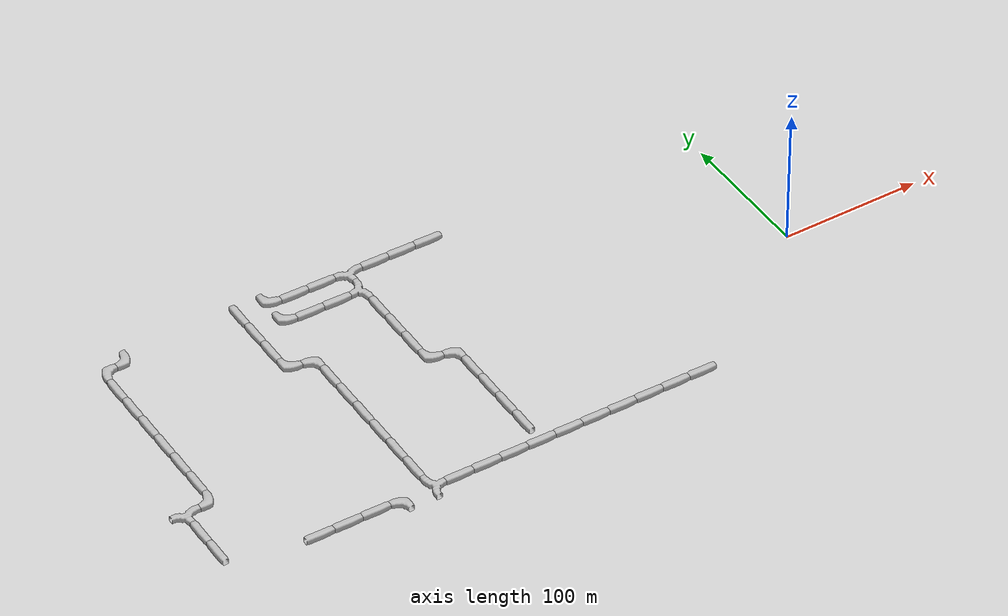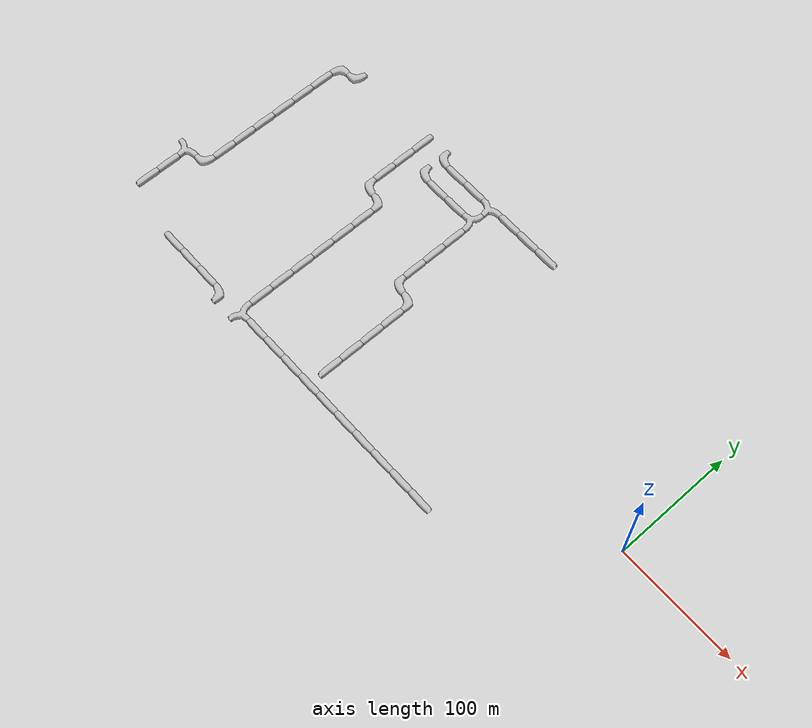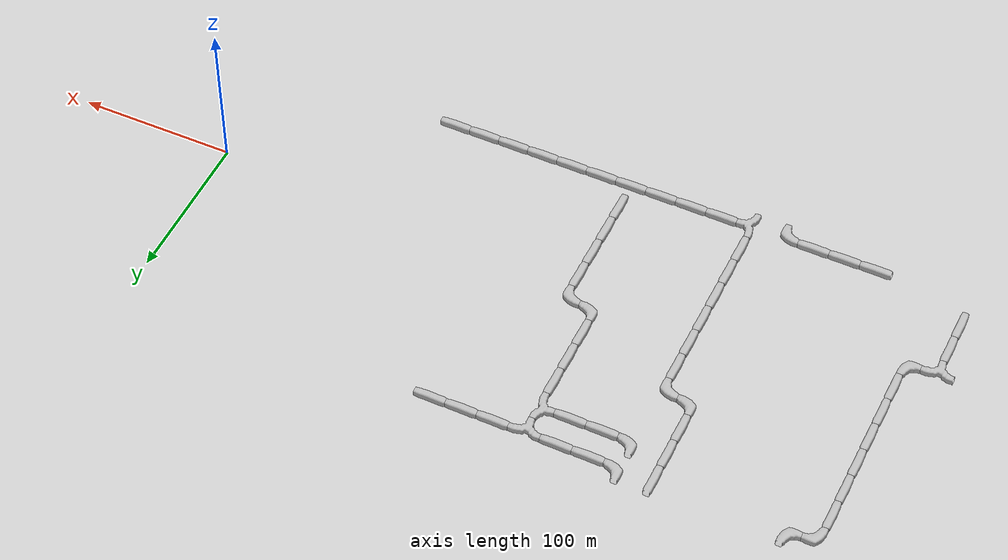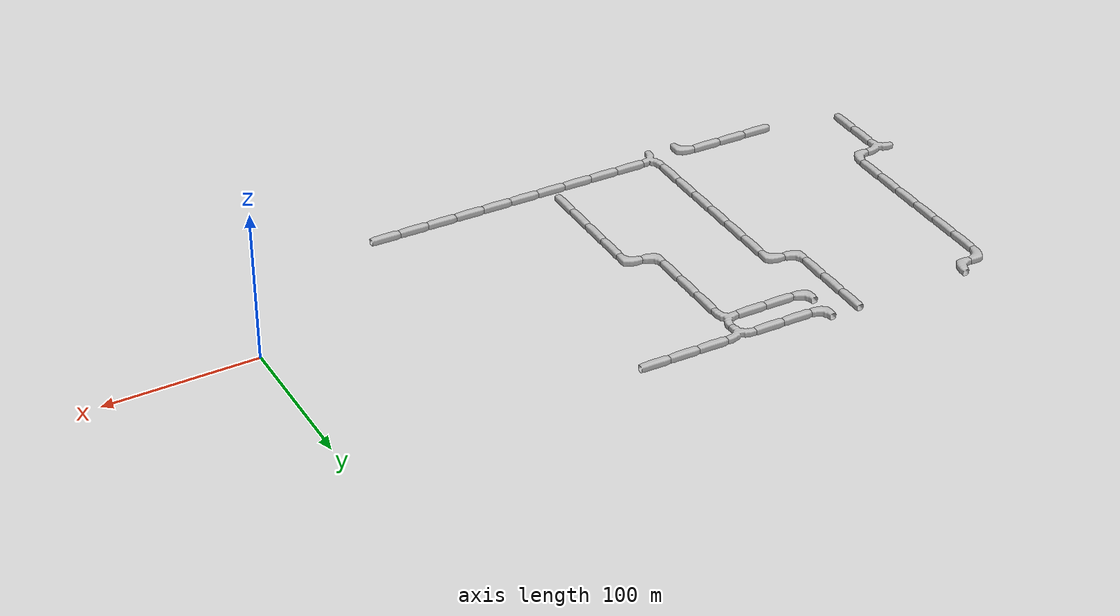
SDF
<sdf version="1.6">
 <world name="cave_32000">
  <include>
   <static>true</static>
   <name>cave_-6_-4</name>
   <pose>-120 -80 0 0 0 1.5707963267948966</pose>
   <uri>model://cave_straight_20m</uri>
  </include>
  <include>
   <static>true</static>
   <name>cave_-7_-4</name>
   <pose>-140 -80 0 0 0 1.5707963267948966</pose>
   <uri>model://cave_straight_20m</uri>
  </include>
  <include>
   <static>true</static>
   <name>cave_-8_-4</name>
   <pose>-160 -80 0 0 0 1.5707963267948966</pose>
   <uri>model://cave_straight_20m</uri>
  </include>
  <include>
   <static>true</static>
   <name>cave_-9_-4</name>
   <pose>-180 -80 0 0 0 1.5707963267948966</pose>
   <uri>model://cave_straight_20m</uri>
  </include>
  <include>
   <static>true</static>
   <name>cave_-10_-4</name>
   <pose>-200 -80 0 0 0 1.5707963267948966</pose>
   <uri>model://cave_straight_20m</uri>
  </include>
  <include>
   <static>true</static>
   <name>cave_-11_-4</name>
   <pose>-220 -80 0 0 0 1.5707963267948966</pose>
   <uri>model://cave_straight_20m</uri>
  </include>
  <include>
   <static>true</static>
   <name>cave_-12_-4</name>
   <pose>-240 -80 0 0 0 1.5707963267948966</pose>
   <uri>model://cave_straight_20m</uri>
  </include>
  <include>
   <static>true</static>
   <name>cave_-13_-4</name>
   <pose>-260 -80 0 0 0 1.5707963267948966</pose>
   <uri>model://cave_straight_20m</uri>
  </include>
  <include>
   <static>true</static>
   <name>cave_-14_-4</name>
   <pose>-280 -80 0 0 0 1.5707963267948966</pose>
   <uri>model://cave_straight_20m</uri>
  </include>
  <include>
   <static>true</static>
   <name>cave_-15_-4</name>
   <pose>-300 -80 0 0 0 1.5707963267948966</pose>
   <uri>model://cave_straight_20m</uri>
  </include>
  <include>
   <static>true</static>
   <name>cave_-16_-4</name>
   <pose>-320 -80 0 0 0 -1.5707963267948966</pose>
   <uri>model://cave_3way_20m</uri>
  </include>
  <include>
   <static>true</static>
   <name>cave_-16_-3</name>
   <pose>-320 -60 0 0 0 0.0</pose>
   <uri>model://cave_straight_20m</uri>
  </include>
  <include>
   <static>true</static>
   <name>cave_-16_-2</name>
   <pose>-320 -40 0 0 0 0.0</pose>
   <uri>model://cave_straight_20m</uri>
  </include>
  <include>
   <static>true</static>
   <name>cave_-16_-1</name>
   <pose>-320 -20 0 0 0 0.0</pose>
   <uri>model://cave_straight_20m</uri>
  </include>
  <include>
   <static>true</static>
   <name>cave_-16_0</name>
   <pose>-320 0 0 0 0 0.0</pose>
   <uri>model://cave_straight_20m</uri>
  </include>
  <include>
   <static>true</static>
   <name>cave_-16_1</name>
   <pose>-320 20 0 0 0 0.0</pose>
   <uri>model://cave_straight_20m</uri>
  </include>
  <include>
   <static>true</static>
   <name>cave_-16_2</name>
   <pose>-320 40 0 0 0 0.0</pose>
   <uri>model://cave_straight_20m</uri>
  </include>
  <include>
   <static>true</static>
   <name>cave_-16_3</name>
   <pose>-320 60 0 0 0 3.141592653589793</pose>
   <uri>model://cave_L_20m</uri>
  </include>
  <include>
   <static>true</static>
   <name>cave_-17_3</name>
   <pose>-340 60 0 0 0 0.0</pose>
   <uri>model://cave_L_20m</uri>
  </include>
  <include>
   <static>true</static>
   <name>cave_-17_4</name>
   <pose>-340 80 0 0 0 0.0</pose>
   <uri>model://cave_straight_20m</uri>
  </include>
  <include>
   <static>true</static>
   <name>cave_-17_5</name>
   <pose>-340 100 0 0 0 0.0</pose>
   <uri>model://cave_straight_20m</uri>
  </include>
  <include>
   <static>true</static>
   <name>cave_-17_6</name>
   <pose>-340 120 0 0 0 0.0</pose>
   <uri>model://cave_straight_20m</uri>
  </include>
  <include>
   <static>true</static>
   <name>cave_-16_6</name>
   <pose>-320 120 0 0 0 0.0</pose>
   <uri>model://cave_L_20m</uri>
  </include>
  <include>
   <static>true</static>
   <name>cave_-15_6</name>
   <pose>-300 120 0 0 0 1.5707963267948966</pose>
   <uri>model://cave_straight_20m</uri>
  </include>
  <include>
   <static>true</static>
   <name>cave_-14_6</name>
   <pose>-280 120 0 0 0 1.5707963267948966</pose>
   <uri>model://cave_straight_20m</uri>
  </include>
  <include>
   <static>true</static>
   <name>cave_-13_6</name>
   <pose>-260 120 0 0 0 3.141592653589793</pose>
   <uri>model://cave_3way_20m</uri>
  </include>
  <include>
   <static>true</static>
   <name>cave_-12_6</name>
   <pose>-240 120 0 0 0 1.5707963267948966</pose>
   <uri>model://cave_straight_20m</uri>
  </include>
  <include>
   <static>true</static>
   <name>cave_-11_6</name>
   <pose>-220 120 0 0 0 1.5707963267948966</pose>
   <uri>model://cave_straight_20m</uri>
  </include>
  <include>
   <static>true</static>
   <name>cave_-10_6</name>
   <pose>-200 120 0 0 0 1.5707963267948966</pose>
   <uri>model://cave_straight_20m</uri>
  </include>
  <include>
   <static>true</static>
   <name>cave_-13_5</name>
   <pose>-260 100 0 0 0 1.5707963267948966</pose>
   <uri>model://cave_3way_20m</uri>
  </include>
  <include>
   <static>true</static>
   <name>cave_-13_4</name>
   <pose>-260 80 0 0 0 0.0</pose>
   <uri>model://cave_straight_20m</uri>
  </include>
  <include>
   <static>true</static>
   <name>cave_-13_3</name>
   <pose>-260 60 0 0 0 0.0</pose>
   <uri>model://cave_straight_20m</uri>
  </include>
  <include>
   <static>true</static>
   <name>cave_-13_2</name>
   <pose>-260 40 0 0 0 0.0</pose>
   <uri>model://cave_straight_20m</uri>
  </include>
  <include>
   <static>true</static>
   <name>cave_-13_1</name>
   <pose>-260 20 0 0 0 0.0</pose>
   <uri>model://cave_L_20m</uri>
  </include>
  <include>
   <static>true</static>
   <name>cave_-12_1</name>
   <pose>-240 20 0 0 0 3.141592653589793</pose>
   <uri>model://cave_L_20m</uri>
  </include>
  <include>
   <static>true</static>
   <name>cave_-12_0</name>
   <pose>-240 0 0 0 0 0.0</pose>
   <uri>model://cave_straight_20m</uri>
  </include>
  <include>
   <static>true</static>
   <name>cave_-12_-1</name>
   <pose>-240 -20 0 0 0 0.0</pose>
   <uri>model://cave_straight_20m</uri>
  </include>
  <include>
   <static>true</static>
   <name>cave_-12_-2</name>
   <pose>-240 -40 0 0 0 0.0</pose>
   <uri>model://cave_straight_20m</uri>
  </include>
  <include>
   <static>true</static>
   <name>cave_-12_-3</name>
   <pose>-240 -60 0 0 0 0.0</pose>
   <uri>model://cave_straight_20m</uri>
  </include>
  <include>
   <static>true</static>
   <name>cave_-14_5</name>
   <pose>-280 100 0 0 0 1.5707963267948966</pose>
   <uri>model://cave_straight_20m</uri>
  </include>
  <include>
   <static>true</static>
   <name>cave_-15_5</name>
   <pose>-300 100 0 0 0 1.5707963267948966</pose>
   <uri>model://cave_straight_20m</uri>
  </include>
  <include>
   <static>true</static>
   <name>cave_-16_5</name>
   <pose>-320 100 0 0 0 0.0</pose>
   <uri>model://cave_L_20m</uri>
  </include>
  <include>
   <static>true</static>
   <name>cave_-23_-3</name>
   <pose>-460 -60 0 0 0 0.0</pose>
   <uri>model://cave_straight_20m</uri>
  </include>
  <include>
   <static>true</static>
   <name>cave_-23_-2</name>
   <pose>-460 -40 0 0 0 0.0</pose>
   <uri>model://cave_straight_20m</uri>
  </include>
  <include>
   <static>true</static>
   <name>cave_-23_-1</name>
   <pose>-460 -20 0 0 0 3.141592653589793</pose>
   <uri>model://cave_3way_20m</uri>
  </include>
  <include>
   <static>true</static>
   <name>cave_-22_-1</name>
   <pose>-440 -20 0 0 0 1.5707963267948966</pose>
   <uri>model://cave_L_20m</uri>
  </include>
  <include>
   <static>true</static>
   <name>cave_-22_0</name>
   <pose>-440 0 0 0 0 0.0</pose>
   <uri>model://cave_straight_20m</uri>
  </include>
  <include>
   <static>true</static>
   <name>cave_-22_1</name>
   <pose>-440 20 0 0 0 0.0</pose>
   <uri>model://cave_straight_20m</uri>
  </include>
  <include>
   <static>true</static>
   <name>cave_-22_2</name>
   <pose>-440 40 0 0 0 0.0</pose>
   <uri>model://cave_straight_20m</uri>
  </include>
  <include>
   <static>true</static>
   <name>cave_-22_3</name>
   <pose>-440 60 0 0 0 0.0</pose>
   <uri>model://cave_straight_20m</uri>
  </include>
  <include>
   <static>true</static>
   <name>cave_-22_4</name>
   <pose>-440 80 0 0 0 0.0</pose>
   <uri>model://cave_straight_20m</uri>
  </include>
  <include>
   <static>true</static>
   <name>cave_-22_5</name>
   <pose>-440 100 0 0 0 0.0</pose>
   <uri>model://cave_straight_20m</uri>
  </include>
  <include>
   <static>true</static>
   <name>cave_-22_6</name>
   <pose>-440 120 0 0 0 -1.5707963267948966</pose>
   <uri>model://cave_L_20m</uri>
  </include>
  <include>
   <static>true</static>
   <name>cave_-21_6</name>
   <pose>-420 120 0 0 0 1.5707963267948966</pose>
   <uri>model://cave_L_20m</uri>
  </include>
  <include>
   <static>true</static>
   <name>cave_-20_-4</name>
   <pose>-400 -80 0 0 0 1.5707963267948966</pose>
   <uri>model://cave_straight_20m</uri>
  </include>
  <include>
   <static>true</static>
   <name>cave_-19_-4</name>
   <pose>-380 -80 0 0 0 1.5707963267948966</pose>
   <uri>model://cave_straight_20m</uri>
  </include>
  <include>
   <static>true</static>
   <name>cave_-18_-4</name>
   <pose>-360 -80 0 0 0 1.5707963267948966</pose>
   <uri>model://cave_straight_20m</uri>
  </include>
  <include>
   <static>true</static>
   <name>cave_-17_-4</name>
   <pose>-340 -80 0 0 0 3.141592653589793</pose>
   <uri>model://cave_L_20m</uri>
  </include>
 </world>
</sdf>
